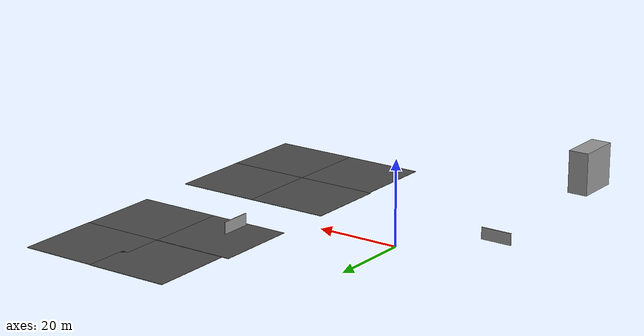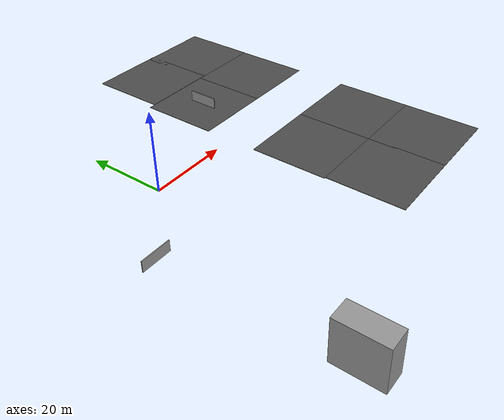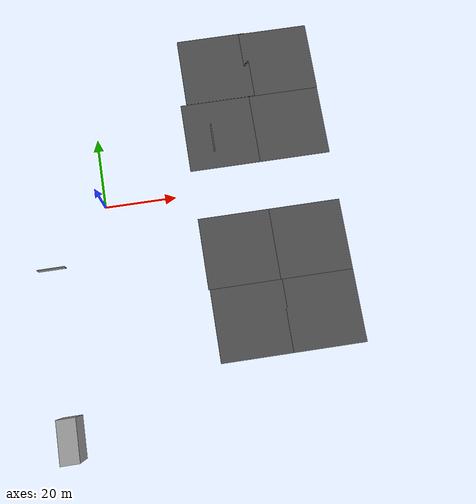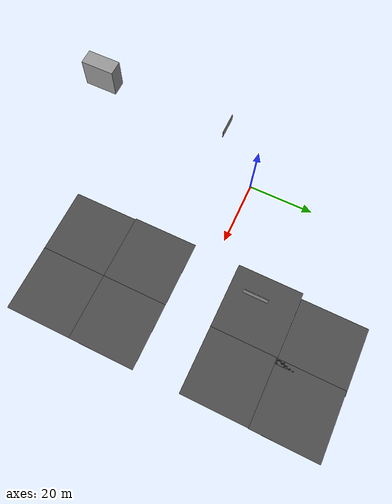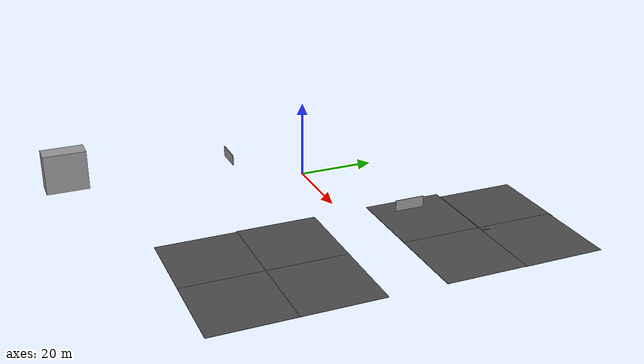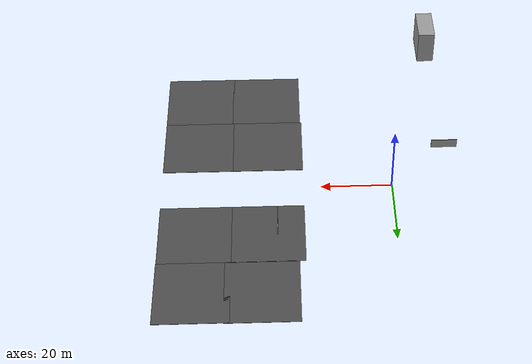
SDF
<sdf version="1.7">
 <world name="basic_world">
  <scene>
   <grid>0</grid>
   <origin_visual>0</origin_visual>
   <ambient>0.85 0.85 0.85 1</ambient>
   <sky><clouds><speed>12</speed></clouds></sky>
   <background>0.35 0.35 0.35 1</background>
   <shadows>1</shadows>
  </scene>
  <model name="Recording Camera">
   <static>1</static>
   <pose>0 -2.3 1.9 0 0.2 1.57</pose>
   <link name="link">
    <sensor name="my_camera" type="camera">
     <camera>
      <horizontal_fov>1.047</horizontal_fov>
      <image><width>1920</width><height>1080</height></image>
      <clip><near>0.1</near><far>100</far></clip>
     </camera>
     <plugin name="camera_controller" filename="libgazebo_ros_camera.so">
      <alwaysOn>1</alwaysOn>
      <updateRate>0.0</updateRate>
      <cameraName>ExternalCam</cameraName>
      <imageTopicName>image_raw</imageTopicName>
      <cameraInfoTopicName>camera_info</cameraInfoTopicName>
     </plugin>
     <always_on>1</always_on>
     <update_rate>500</update_rate>
    </sensor>
   </link>
  </model>
  <model name="World_Origin">
   <static>1</static>
   <link name="Origin_Link">
    <visual name="Origin_Visual">
     <cast_shadows>0</cast_shadows>
     <geometry><sphere><radius>0.005</radius></sphere></geometry>
     <material>
      <script><name>Gazebo/Orange</name><uri>file://media/materials/scripts/gazebo.material</uri></script>
      <shader type="pixel"><normal_map>__default__</normal_map></shader>
     </material>
    </visual>
   </link>
  </model>
  <light name="sun" type="directional">
   <pose>0 0 1000 0 -0 0</pose>
   <diffuse>0.8 0.8 0.8 1</diffuse>
   <specular>0.5 0.5 0.5 1</specular>
   <attenuation>
    <range>1000</range>
    <constant>0.9</constant>
    <linear>0.01</linear>
    <quadratic>0.001</quadratic>
   </attenuation>
   <direction>-0.5 0.1 -0.4</direction>
   <spot><inner_angle>0</inner_angle><outer_angle>0</outer_angle><falloff>0</falloff></spot>
  </light>
  <physics type="ode">
   <max_step_size>0.001</max_step_size>
   <real_time_factor>1</real_time_factor>
   <real_time_update_rate>200</real_time_update_rate>
   <bullet>
    <solver>
     <type>SequentialImpulse</type>
     <min_step_size>0.0001</min_step_size>
     <iters>50</iters>
     <sor>1.3</sor>
    </solver>
    <constraints>
     <cfm>1e-05</cfm>
     <erp>0.3</erp>
     <contact_surface_layer>0.001</contact_surface_layer>
     <split_impulse>1</split_impulse>
     <split_impulse_penetration_threshold>-0.01</split_impulse_penetration_threshold>
    </constraints>
   </bullet>
  </physics>
  <model name="ground_plane">
   <static>1</static>
   <link name="link">
    <collision name="collision">
     <geometry><plane><normal>0 0 1</normal><size>100 100</size></plane></geometry>
     <surface><friction><ode><mu>100</mu><mu2>50</mu2></ode></friction></surface>
    </collision>
   </link>
  </model>
  <plugin name="Step_World_Plugin" filename="libStep_World_Plugin.so"/>
  <gravity>0 0 -9.8066</gravity>
  <magnetic_field>6e-06 2.3e-05 -4.2e-05</magnetic_field>
  <atmosphere type="adiabatic"/>
  <spherical_coordinates>
   <surface_model>EARTH_WGS84</surface_model>
   <latitude_deg>0</latitude_deg>
   <longitude_deg>0</longitude_deg>
   <elevation>0</elevation>
   <heading_deg>0</heading_deg>
  </spherical_coordinates>
  <model name="asphalt_plane_0">
   <static>1</static>
   <link name="link">
    <collision name="collision"><geometry><box><size>20 20 0.1</size></box></geometry></collision>
    <visual name="visual">
     <cast_shadows>0</cast_shadows>
     <geometry><box><size>20 20 0.1</size></box></geometry>
     <material>
      <script>
       <uri>model://asphalt_plane/materials/scripts</uri>
       <uri>model://asphalt_plane/materials/textures</uri>
       <name>vrc/asphalt</name>
      </script>
     </material>
    </visual>
   </link>
   <pose>35 17 0 0 -0 0</pose>
  </model>
  <model name="asphalt_plane_3">
   <static>1</static>
   <link name="link">
    <collision name="collision"><geometry><box><size>20 20 0.1</size></box></geometry></collision>
    <visual name="visual">
     <cast_shadows>0</cast_shadows>
     <geometry><box><size>20 20 0.1</size></box></geometry>
     <material>
      <script>
       <uri>model://asphalt_plane/materials/scripts</uri>
       <uri>model://asphalt_plane/materials/textures</uri>
       <name>vrc/asphalt</name>
      </script>
     </material>
    </visual>
   </link>
   <pose>35 -17 0 0 -0 0</pose>
  </model>
  <model name="asphalt_plane_2">
   <static>1</static>
   <link name="link">
    <collision name="collision"><geometry><box><size>20 20 0.1</size></box></geometry></collision>
    <visual name="visual">
     <cast_shadows>0</cast_shadows>
     <geometry><box><size>20 20 0.1</size></box></geometry>
     <material>
      <script>
       <uri>model://asphalt_plane/materials/scripts</uri>
       <uri>model://asphalt_plane/materials/textures</uri>
       <name>vrc/asphalt</name>
      </script>
     </material>
    </visual>
   </link>
   <pose>55 -17 0 0 -0 0</pose>
  </model>
  <model name="asphalt_plane_4">
   <static>1</static>
   <link name="link">
    <collision name="collision"><geometry><box><size>20 20 0.1</size></box></geometry></collision>
    <visual name="visual">
     <cast_shadows>0</cast_shadows>
     <geometry><box><size>20 20 0.1</size></box></geometry>
     <material>
      <script>
       <uri>model://asphalt_plane/materials/scripts</uri>
       <uri>model://asphalt_plane/materials/textures</uri>
       <name>vrc/asphalt</name>
      </script>
     </material>
    </visual>
   </link>
   <pose>55 -37 0 0 -0 0</pose>
  </model>
  <model name="asphalt_plane_2">
   <static>1</static>
   <link name="link">
    <collision name="collision"><geometry><box><size>20 20 0.1</size></box></geometry></collision>
    <visual name="visual">
     <cast_shadows>0</cast_shadows>
     <geometry><box><size>20 20 0.1</size></box></geometry>
     <material>
      <script>
       <uri>model://asphalt_plane/materials/scripts</uri>
       <uri>model://asphalt_plane/materials/textures</uri>
       <name>vrc/asphalt</name>
      </script>
     </material>
    </visual>
   </link>
   <pose>55 -17 0 0 -0 0</pose>
  </model>
  <model name="asphalt_plane_1">
   <static>1</static>
   <link name="link">
    <collision name="collision"><geometry><box><size>20 20 0.1</size></box></geometry></collision>
    <visual name="visual">
     <cast_shadows>0</cast_shadows>
     <geometry><box><size>20 20 0.1</size></box></geometry>
     <material>
      <script>
       <uri>model://asphalt_plane/materials/scripts</uri>
       <uri>model://asphalt_plane/materials/textures</uri>
       <name>vrc/asphalt</name>
      </script>
     </material>
    </visual>
   </link>
   <pose>55 17 0 0 -0 0</pose>
  </model>
  <model name="asphalt_plane_4_clone">
   <static>1</static>
   <link name="link">
    <collision name="collision"><geometry><box><size>20 20 0.1</size></box></geometry></collision>
    <visual name="visual">
     <cast_shadows>0</cast_shadows>
     <geometry><box><size>20 20 0.1</size></box></geometry>
     <material>
      <script>
       <uri>model://asphalt_plane/materials/scripts</uri>
       <uri>model://asphalt_plane/materials/textures</uri>
       <name>vrc/asphalt</name>
      </script>
     </material>
    </visual>
   </link>
   <pose>35.3466 -36.9952 0 0 -0 0</pose>
  </model>
  <model name="grey_wall">
   <static>1</static>
   <link name="link">
    <pose>0 0 1.4 0 -0 0</pose>
    <collision name="collision"><geometry><box><size>7.5 0.2 2.8</size></box></geometry></collision>
    <visual name="visual">
     <cast_shadows>0</cast_shadows>
     <geometry><box><size>7.5 0.2 2.8</size></box></geometry>
     <material>
      <script>
       <uri>model://grey_wall/materials/scripts</uri>
       <uri>model://grey_wall/materials/textures</uri>
       <name>vrc/grey_wall</name>
      </script>
     </material>
    </visual>
   </link>
   <pose>-16.4396 -15.2611 0 0 -0 0</pose>
  </model>
  <model name="grey_wall_clone">
   <static>1</static>
   <link name="link">
    <pose>0 0 1.4 0 -0 0</pose>
    <collision name="collision"><geometry><box><size>7.5 0.2 2.8</size></box></geometry></collision>
    <visual name="visual">
     <cast_shadows>0</cast_shadows>
     <geometry><box><size>7.5 0.2 2.8</size></box></geometry>
     <material>
      <script>
       <uri>model://grey_wall/materials/scripts</uri>
       <uri>model://grey_wall/materials/textures</uri>
       <name>vrc/grey_wall</name>
      </script>
     </material>
    </visual>
   </link>
   <pose>32.4648 14.9864 1.59336 0 -0 1.57</pose>
  </model>
  <model name="asphalt_plane_0_clone">
   <static>1</static>
   <link name="link">
    <collision name="collision"><geometry><box><size>20 20 0.1</size></box></geometry></collision>
    <visual name="visual">
     <cast_shadows>0</cast_shadows>
     <geometry><box><size>20 20 0.1</size></box></geometry>
     <material>
      <script>
       <uri>model://asphalt_plane/materials/scripts</uri>
       <uri>model://asphalt_plane/materials/textures</uri>
       <name>vrc/asphalt</name>
      </script>
     </material>
    </visual>
   </link>
   <pose>36.7198 37.1023 0 0 -0 0</pose>
  </model>
  <model name="asphalt_plane_0_clone_0">
   <static>1</static>
   <link name="link">
    <collision name="collision"><geometry><box><size>20 20 0.1</size></box></geometry></collision>
    <visual name="visual">
     <cast_shadows>0</cast_shadows>
     <geometry><box><size>20 20 0.1</size></box></geometry>
     <material>
      <script>
       <uri>model://asphalt_plane/materials/scripts</uri>
       <uri>model://asphalt_plane/materials/textures</uri>
       <name>vrc/asphalt</name>
      </script>
     </material>
    </visual>
   </link>
   <pose>55.1036 36.9716 0 0 -0 0</pose>
  </model>
  <model name="unit_box">
   <pose>-15 -60 5.2 0 0 0</pose>
   <link name="link">
    <inertial>
     <mass>1000</mass>
     <inertia><ixx>2</ixx><ixy>0</ixy><ixz>0</ixz><iyy>2</iyy><iyz>0</iyz><izz>2</izz></inertia>
    </inertial>
    <collision name="collision"><geometry><box><size>5 11 10.4</size></box></geometry></collision>
    <visual name="visual">
     <geometry><box><size>5 11 10.4</size></box></geometry>
     <material>
      <script><name>Gazebo/Grey</name><uri>file://media/materials/scripts/gazebo.material</uri></script>
     </material>
    </visual>
   </link>
  </model>
 </world>
</sdf>
